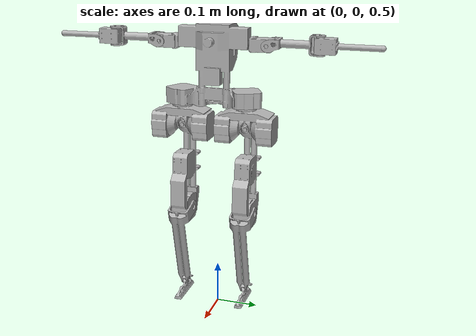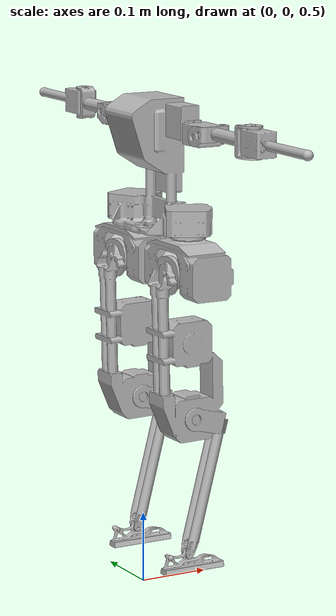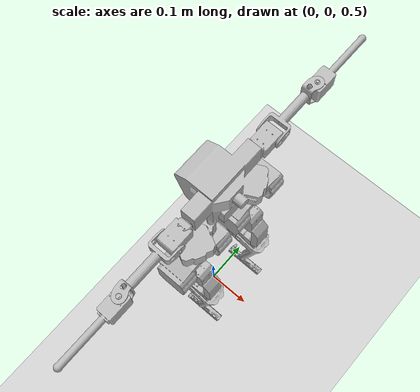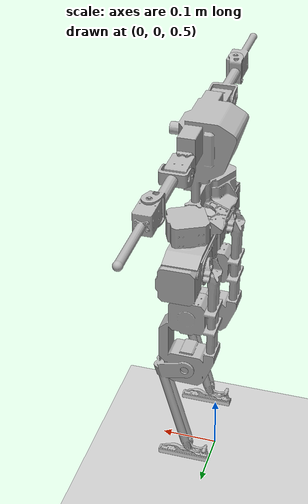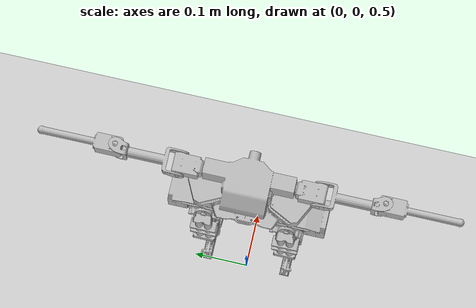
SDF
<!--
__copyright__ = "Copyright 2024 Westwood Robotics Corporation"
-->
<sdf version="1.6">
    <world name="default">

        <physics type="ode">
          <gravity>0 0 -9.81</gravity>
          <ode>
            <solver>
              <type>quick</type>
              <dt>0.001</dt>
              <iters>40</iters>
              <sor>1.0</sor>
            </solver>
            <constraints>
              <cfm>0.0</cfm>
              <erp>0.2</erp>
              <contact_max_correcting_vel>100.0</contact_max_correcting_vel>
              <contact_surface_layer>0.0</contact_surface_layer>
            </constraints>
          </ode>
        </physics>

        <include>
            <uri>model://ground_plane</uri>
        </include>

        <include>
            <uri>model://sun</uri>
        </include>

        <model name="BRUCE">
            <include>
    	        <uri>model://bruce</uri>
    	        <pose>0 0 1 0 0 0</pose>
	    </include>
    	    <joint name="fix_to_world" type="fixed">
	        <parent>world</parent>
	        <child>bruce::base_link</child>
            </joint>
            <plugin name="gazebo_model_plugin" filename="bruce_gazebo_model_interface.so">
	        <robot_name>bruce</robot_name>
            </plugin>
        </model>

        <plugin name="gazebo_world_plugin" filename="bruce_gazebo_world_interface.so">
            <world_name>world</world_name>
        </plugin>

    </world>
</sdf>
